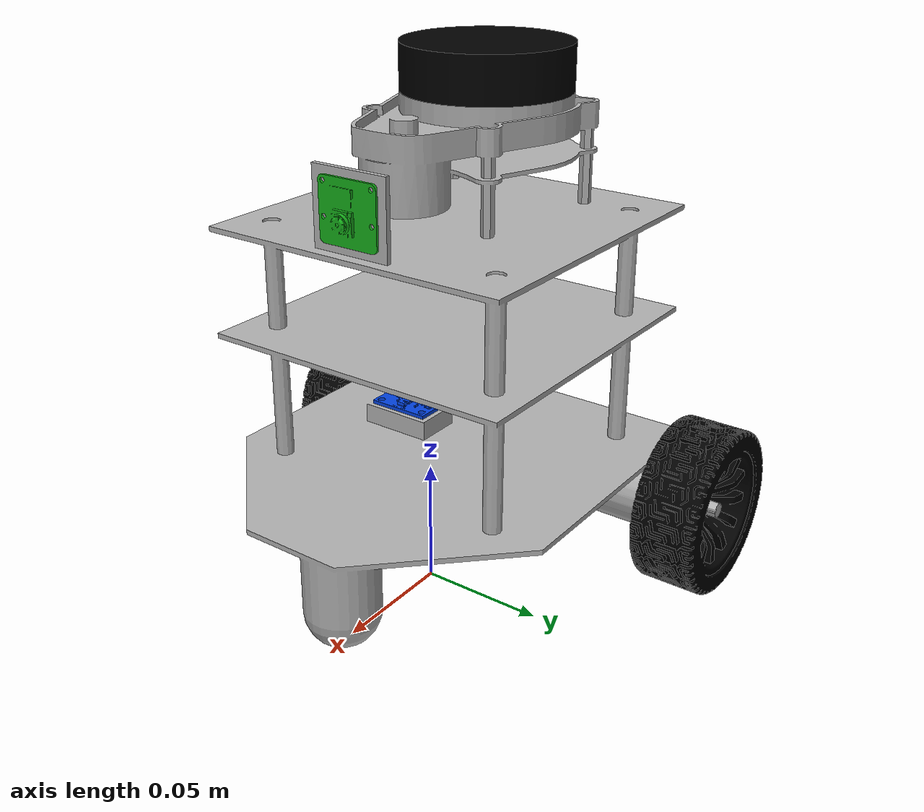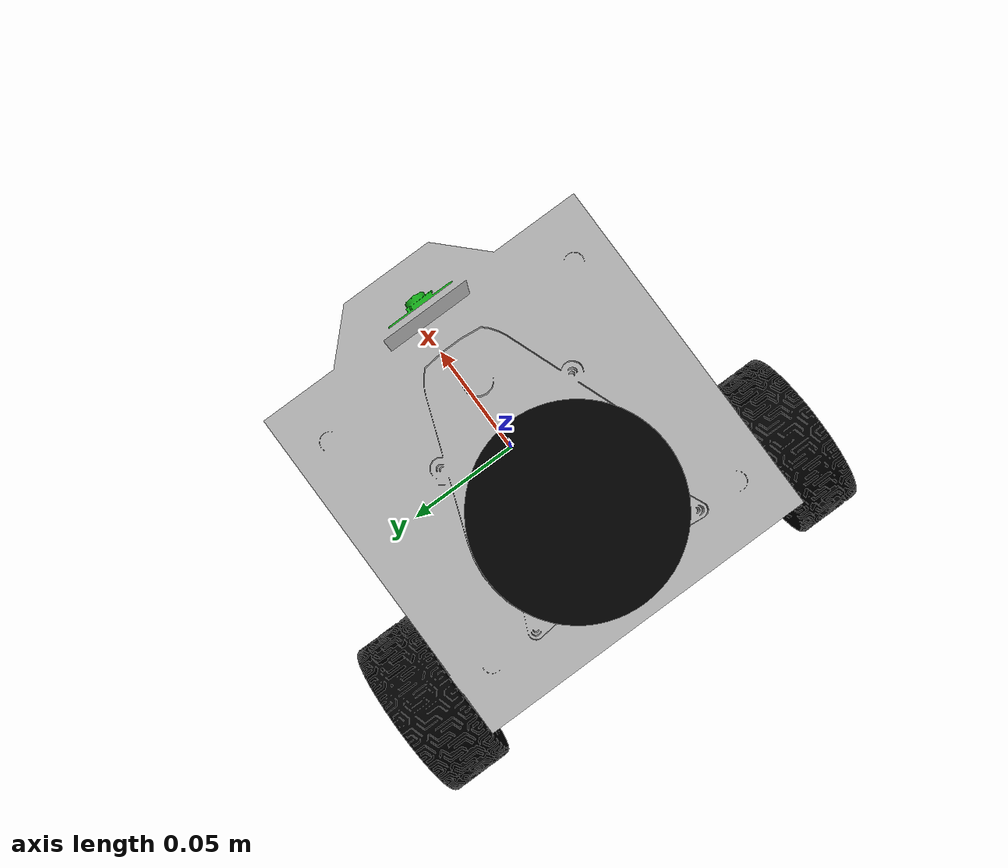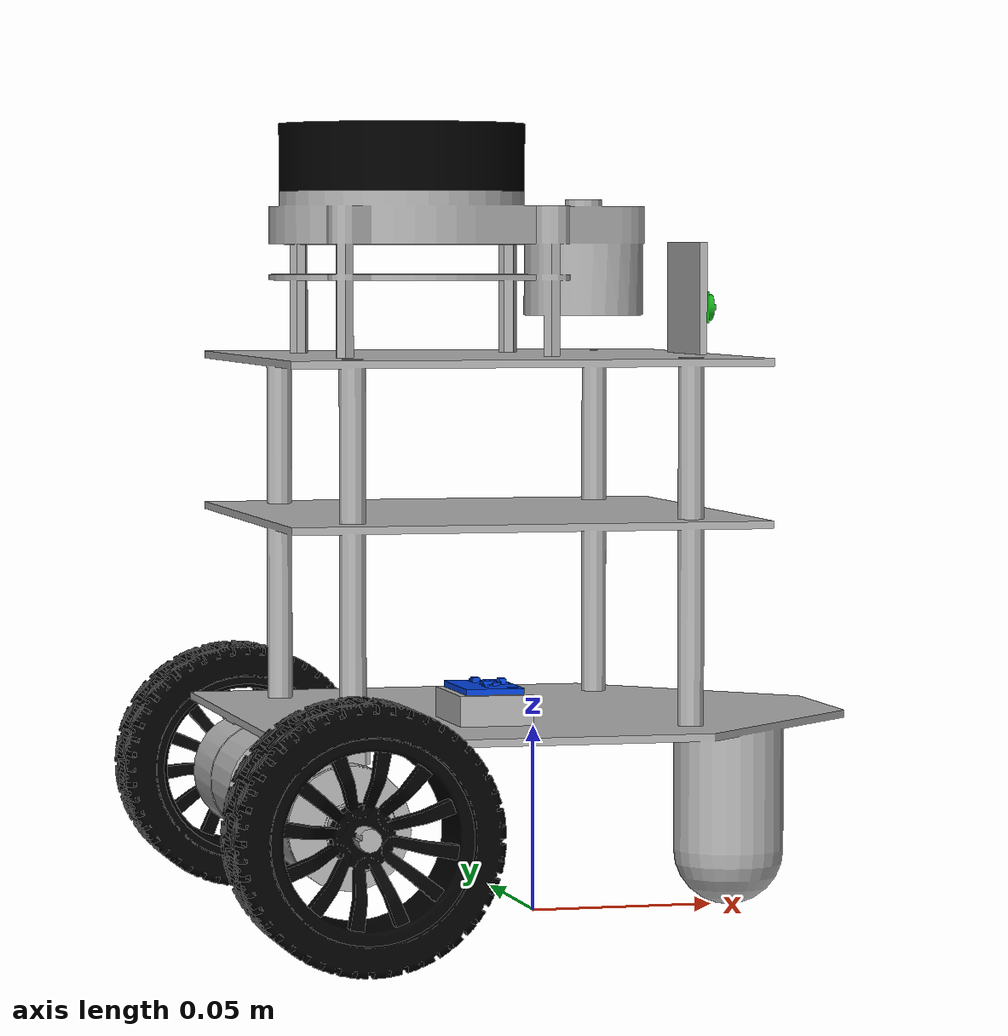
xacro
<?xml version="1.0" ?>
<robot name="edu_amr" xmlns:xacro="http://www.ros.org/wiki/xacro">

<xacro:include filename="$(find edu_amr_description)/urdf/materials.xacro" />
<xacro:include filename="$(find edu_amr_description)/urdf/edu_amr.trans" />
<xacro:include filename="$(find edu_amr_description)/urdf/edu_amr.gazebo" />

<link name="base_link">
  <inertial>
    <origin xyz="-0.02222141938082127 -0.00036192202124805104 0.09520868144869932" rpy="0 0 0"/>
    <mass value="2.6485187031603292"/>
    <inertia ixx="0.013976" iyy="0.015848" izz="0.008361" ixy="2e-06" iyz="-3.5e-05" ixz="-0.000507"/>
  </inertial>
  <visual>
    <origin xyz="0 0 0" rpy="0 0 0"/>
    <geometry>
      <mesh filename="package://edu_amr_description/meshes/base_link.stl" scale="0.001 0.001 0.001"/>
    </geometry>
    <material name="silver"/>
  </visual>
  <collision>
    <origin xyz="0 0 0" rpy="0 0 0"/>
    <geometry>
      <mesh filename="package://edu_amr_description/meshes/base_link.stl" scale="0.001 0.001 0.001"/>
    </geometry>
  </collision>
</link>

<link name="left_wheel_1">
  <inertial>
    <origin xyz="2.7938483943001913e-08 -0.008809196335037156 -6.264050599058546e-08" rpy="0 0 0"/>
    <mass value="0.27294370957502523"/>
    <inertia ixx="0.000119" iyy="0.0002" izz="0.000119" ixy="0.0" iyz="-0.0" ixz="0.0"/>
  </inertial>
  <visual>
    <origin xyz="0.065 -0.095 -0.0325" rpy="0 0 0"/>
    <geometry>
      <mesh filename="package://edu_amr_description/meshes/left_wheel_1.stl" scale="0.001 0.001 0.001"/>
    </geometry>
    <material name="black"/>
  </visual>
  <collision>
    <origin xyz="0.065 -0.095 -0.0325" rpy="0 0 0"/>
    <geometry>
      <mesh filename="package://edu_amr_description/meshes/left_wheel_1.stl" scale="0.001 0.001 0.001"/>
    </geometry>
  </collision>
</link>

<link name="right_wheel_1">
  <inertial>
    <origin xyz="-8.051599123537478e-09 0.00880921502843407 -6.264050686488609e-08" rpy="0 0 0"/>
    <mass value="0.2729437095750096"/>
    <inertia ixx="0.000119" iyy="0.0002" izz="0.000119" ixy="0.0" iyz="0.0" ixz="-0.0"/>
  </inertial>
  <visual>
    <origin xyz="0.065 0.095 -0.0325" rpy="0 0 0"/>
    <geometry>
      <mesh filename="package://edu_amr_description/meshes/right_wheel_1.stl" scale="0.001 0.001 0.001"/>
    </geometry>
    <material name="black"/>
  </visual>
  <collision>
    <origin xyz="0.065 0.095 -0.0325" rpy="0 0 0"/>
    <geometry>
      <mesh filename="package://edu_amr_description/meshes/right_wheel_1.stl" scale="0.001 0.001 0.001"/>
    </geometry>
  </collision>
</link>

<link name="imu_1">
  <inertial>
    <origin xyz="1.2277505791965376e-05 9.132307373265966e-05 0.000861898562579344" rpy="0 0 0"/>
    <mass value="0.004997129426507195"/>
    <inertia ixx="0.0" iyy="0.0" izz="0.0" ixy="0.0" iyz="-0.0" ixz="-0.0"/>
  </inertial>
  <visual>
    <origin xyz="0.019801 0.026021 -0.062522" rpy="0 0 0"/>
    <geometry>
      <mesh filename="package://edu_amr_description/meshes/imu_1.stl" scale="0.001 0.001 0.001"/>
    </geometry>
    <material name="blue"/>
  </visual>
  <collision>
    <origin xyz="0.019801 0.026021 -0.062522" rpy="0 0 0"/>
    <geometry>
      <mesh filename="package://edu_amr_description/meshes/imu_1.stl" scale="0.001 0.001 0.001"/>
    </geometry>
  </collision>
</link>

<link name="camera_1">
  <inertial>
    <origin xyz="0.001391276525945298 -6.565133329183315e-05 -0.0003892293542707148" rpy="0 0 0"/>
    <mass value="0.0067428696514978854"/>
    <inertia ixx="0.0" iyy="0.0" izz="0.0" ixy="0.0" iyz="0.0" ixz="0.0"/>
  </inertial>
  <visual>
    <origin xyz="-0.044 -0.0 -0.1655" rpy="0 0 0"/>
    <geometry>
      <mesh filename="package://edu_amr_description/meshes/camera_1.stl" scale="0.001 0.001 0.001"/>
    </geometry>
    <material name="green"/>
  </visual>
  <collision>
    <origin xyz="-0.044 -0.0 -0.1655" rpy="0 0 0"/>
    <geometry>
      <mesh filename="package://edu_amr_description/meshes/camera_1.stl" scale="0.001 0.001 0.001"/>
    </geometry>
  </collision>
</link>

<link name="lidar_1">
  <inertial>
    <origin xyz="-4.241334066457103e-07 -4.671755761875305e-18 0.008999999999999952" rpy="0 0 0"/>
    <mass value="0.47757295201389544"/>
    <inertia ixx="0.000141" iyy="0.000141" izz="0.000257" ixy="-0.0" iyz="-0.0" ixz="0.0"/>
  </inertial>
  <visual>
    <origin xyz="0.036095 0.0 -0.194" rpy="0 0 0"/>
    <geometry>
      <mesh filename="package://edu_amr_description/meshes/lidar_1.stl" scale="0.001 0.001 0.001"/>
    </geometry>
    <material name="black"/>
  </visual>
  <collision>
    <origin xyz="0.036095 0.0 -0.194" rpy="0 0 0"/>
    <geometry>
      <mesh filename="package://edu_amr_description/meshes/lidar_1.stl" scale="0.001 0.001 0.001"/>
    </geometry>
  </collision>
</link>

<joint name="left_wheel_joint" type="continuous">
  <origin xyz="-0.065 0.095 0.0325" rpy="0 0 0"/>
  <parent link="base_link"/>
  <child link="left_wheel_1"/>
  <axis xyz="0.0 1.0 0.0"/>
</joint>

<joint name="right_wheel_joint" type="continuous">
  <origin xyz="-0.065 -0.095 0.0325" rpy="0 0 0"/>
  <parent link="base_link"/>
  <child link="right_wheel_1"/>
  <axis xyz="0.0 1.0 0.0"/>
</joint>

<joint name="imu_joint" type="fixed">
  <origin xyz="-0.019801 -0.026021 0.062522" rpy="0 0 0"/>
  <parent link="base_link"/>
  <child link="imu_1"/>
</joint>

<joint name="camera_joint" type="fixed">
  <origin xyz="0.044 0.0 0.1655" rpy="0 0 0"/>
  <parent link="base_link"/>
  <child link="camera_1"/>
</joint>

<joint name="lidar_joint" type="fixed">
  <origin xyz="-0.036095 0.0 0.194" rpy="0 0 0"/>
  <parent link="base_link"/>
  <child link="lidar_1"/>
</joint>

</robot>

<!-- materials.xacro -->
<robot name="edu_amr" xmlns:xacro="http://www.ros.org/wiki/xacro" >

	<material name="silver">
		<color rgba="0.700 0.700 0.700 1.000"/>
	</material>

	<material name="black" >
		<color rgba="0.0 0.0 0.0 1.0" />
	</material>

	<material name="green" >
    <color rgba="0.08235294117647059 0.6901960784313725 0.10196078431372549 1.0" />
  </material>

	<material name="blue" >
    <color rgba="0.011764705882352941 0.2627450980392157 0.8745098039215686 1.0" />
  </material>

</robot>
